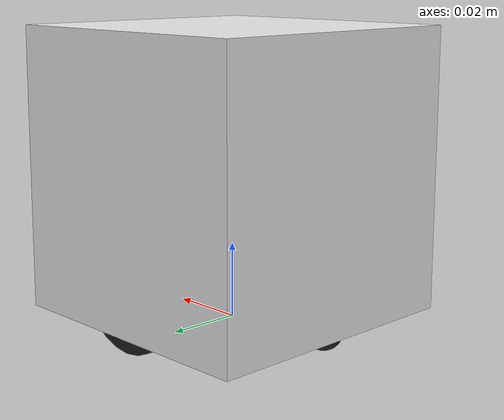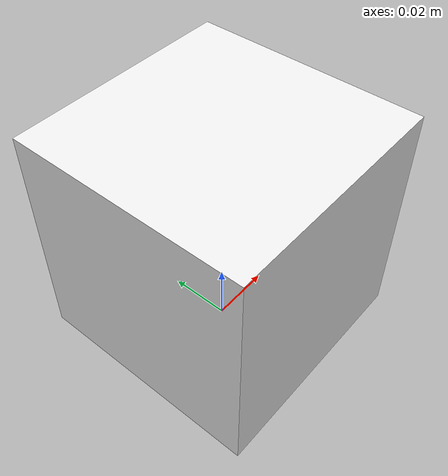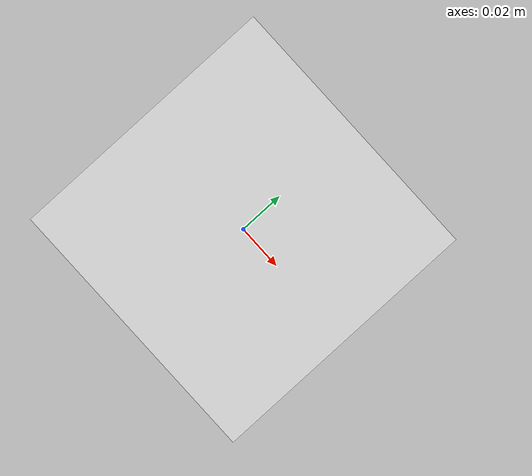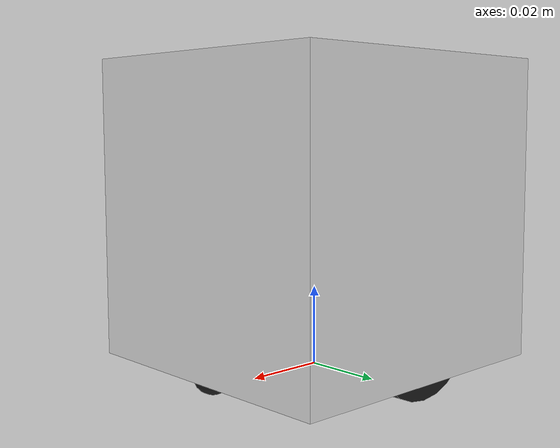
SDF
<?xml version='1.0'?>
<sdf version='1.6'>

  <model name='vsssoccer_robot'>

    <link name='base'>
      <inertial>
        <pose frame=''>0.001453 -0.000453 0.029787 0 0 0</pose> <!-- m m m rad rad rad -->
        <inertia>
          <ixx>0.0004219</ixx> <!-- kg.m² -->
          <ixy>0</ixy>
          <ixz>0</ixz>
          <iyy>0.0004219</iyy>
          <iyz>0</iyz>
          <izz>0.0004219</izz>
        </inertia>
        <mass>0.45</mass> <!-- kg -->
      </inertial>
      <pose frame=''>0 0 0 0 0 0</pose>
      <kinematic>0</kinematic>
      <gravity>1</gravity>

      <visual name='base_visual'>
        <pose frame=''>0 0 0.04 0 0 0</pose>
        <geometry>
          <box>
            <size>0.075 0.075 0.075</size>
          </box>
        </geometry>
        <material>
          <script>
            <uri>file://media/materials/scripts/gazebo.material</uri>
            <name>Gazebo/White</name>
          </script>
        </material>
      </visual>
      <collision name='base_collision'>
        <pose frame=''>0 0 0.04 0 0 0</pose>
        <geometry>
          <box>
            <size>0.075 0.075 0.075</size>
          </box>
        </geometry>
        <surface>
          <friction>
            <ode>
              <mu>1</mu>
              <mu2>1</mu2>
            </ode>
          </friction>
        </surface>
      </collision>

      <visual name='rear_wheel_visual'>
        <pose frame=''>-0.0325 0 0.004 0 0 0</pose>
        <geometry>
          <sphere>
            <radius>0.005</radius>
          </sphere>
        </geometry>
        <material>
          <script>
            <uri>file://media/materials/scripts/gazebo.material</uri>
            <name>Gazebo/Black</name>
          </script>
        </material>
      </visual>
      <collision name='rear_wheel_collision'>
        <pose frame=''>-0.0325 0 0.004 0 0 0</pose>
        <geometry>
          <sphere>
            <radius>0.005</radius>
          </sphere>
        </geometry>
        <surface>
          <friction>
            <ode>
              <mu>0.3</mu>
              <mu2>0.3</mu2>
            </ode>
          </friction>
        </surface>
      </collision>

      <visual name='front_wheel_visual'>
        <pose frame=''>0.0325 0 0.004 0 0 0</pose>
        <geometry>
          <sphere>
            <radius>0.005</radius>
          </sphere>
        </geometry>
        <material>
          <script>
            <uri>file://media/materials/scripts/gazebo.material</uri>
            <name>Gazebo/Black</name>
          </script>
        </material>
      </visual>
      <collision name='front_wheel_collision'>
        <pose frame=''>0.0325 0 0.004 0 0 0</pose>
        <geometry>
          <sphere>
            <radius>0.005</radius>
          </sphere>
        </geometry>
        <surface>
          <friction>
            <ode>
              <mu>0.3</mu>
              <mu2>0.3</mu2>
            </ode>
          </friction>
        </surface>
      </collision>
    </link>

    <link name='left_wheel'>
      <pose frame=''>0 0.0345 0.0155 0 0 0</pose>
      <inertial>
        <inertia>
          <ixx>0.000000365</ixx>
          <ixy>0</ixy>
          <ixz>0</ixz>
          <iyy>0.000000365</iyy>
          <iyz>0</iyz>
          <izz>0.000000723</izz>
        </inertia>
        <mass>0.005</mass>
        <pose frame=''>0 0 0 0 0 0</pose>
      </inertial>
      <kinematic>0</kinematic>
      <gravity>1</gravity>
      <visual name='visual'>
        <pose frame=''>0 0 0 0 1.5707 1.5707</pose>
        <geometry>
          <cylinder>
            <radius>0.017</radius>
            <length>0.003</length>
          </cylinder>
        </geometry>
        <material>
          <script>
            <uri>file://media/materials/scripts/gazebo.material</uri>
            <name>Gazebo/Black</name>
          </script>
        </material>
      </visual>
      <collision name='collision'>
        <pose frame=''>0 0 0 0 1.5707 1.5707</pose>
        <geometry>
          <cylinder>
            <radius>0.017</radius>
            <length>0.003</length>
          </cylinder>
        </geometry>
        <surface>
          <friction>
            <ode>
              <mu>1</mu>
              <mu2>1</mu2>
            </ode>
          </friction>
        </surface>
      </collision>
    </link>

    <link name='right_wheel'>
      <pose frame=''>0 -0.0345 0.0155 0 0 0</pose>
      <inertial>
        <inertia>
          <ixx>0.000000365</ixx>
          <ixy>0</ixy>
          <ixz>0</ixz>
          <iyy>0.000000365</iyy>
          <iyz>0</iyz>
          <izz>0.000000723</izz>
        </inertia>
        <mass>0.005</mass>
        <pose frame=''>0 0 0 0 0 0</pose>
      </inertial>
      <kinematic>0</kinematic>
      <gravity>1</gravity>
      <visual name='visual'>
        <pose frame=''>0 0 0 0 1.5707 1.5707</pose>
        <geometry>
          <cylinder>
            <radius>0.017</radius>
            <length>0.003</length>
          </cylinder>
        </geometry>
        <material>
          <script>
            <uri>file://media/materials/scripts/gazebo.material</uri>
            <name>Gazebo/Black</name>
          </script>
        </material>
      </visual>
      <collision name='collision'>
        <pose frame=''>0 0 0 0 1.5707 1.5707</pose>
        <geometry>
          <cylinder>
            <radius>0.017</radius>
            <length>0.003</length>
          </cylinder>
        </geometry>
        <surface>
          <friction>
            <ode>
              <mu>1</mu>
              <mu2>1</mu2>
            </ode>
          </friction>
        </surface>
      </collision>
    </link>

    <joint name='left_wheel' type='revolute'>
      <parent>base</parent>
      <child>left_wheel</child>
      <pose frame=''>0 0 0 0 0 0</pose>
      <axis>
        <xyz>0 1 0</xyz>
        <use_parent_model_frame>0</use_parent_model_frame>
        <dynamics>
          <damping>0</damping>
          <friction>0</friction>
        </dynamics>
      </axis>
    </joint>

    <joint name='right_wheel' type='revolute'>
      <parent>base</parent>
      <child>right_wheel</child>
      <pose frame=''>0 0 0 0 0 0</pose>
      <axis>
        <xyz>0 1 0</xyz>
        <use_parent_model_frame>0</use_parent_model_frame>
        <dynamics>
          <damping>0</damping>
          <friction>0</friction>
        </dynamics>
      </axis>
    </joint>

    <plugin name='differential_drive_controller' filename='libgazebo_ros_diff_drive.so'>
      <alwaysOn>true</alwaysOn>
      <updateRate>33</updateRate>
      <leftJoint>left_wheel</leftJoint>
      <rightJoint>right_wheel</rightJoint>
      <wheelSeparation>0.069</wheelSeparation>
      <wheelDiameter>0.034</wheelDiameter>
      <torque>0.019862</torque>
      <commandTopic>cmd_vel_home2</commandTopic>
      <odometryTopic>odom</odometryTopic>
      <odometryFrame>odom</odometryFrame>
      <robotBaseFrame>base</robotBaseFrame>
    </plugin>

  </model>
</sdf>
